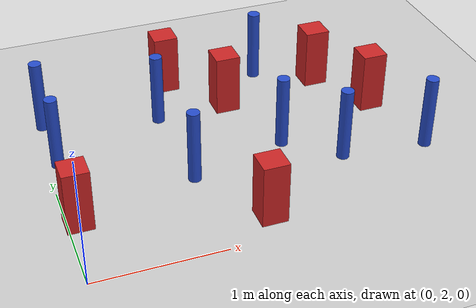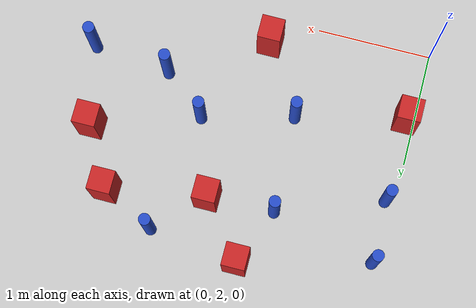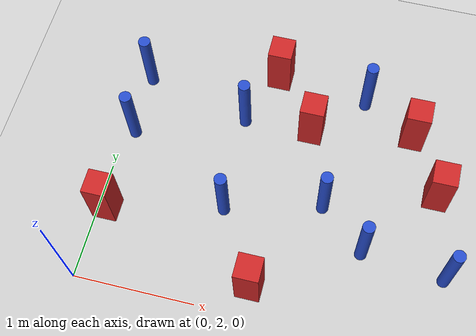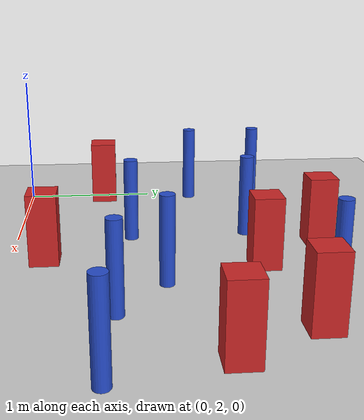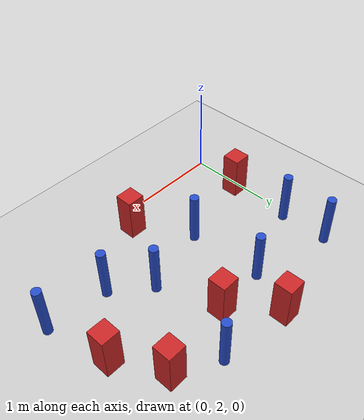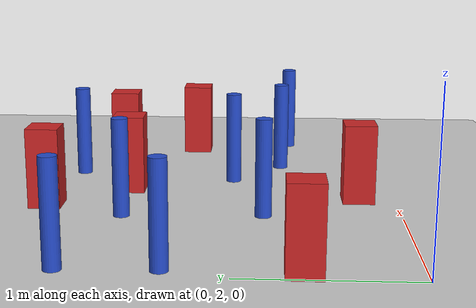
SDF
<sdf version="1.6">
 <world name="default">
  <model name="ground_plane">
   <static>1</static>
   <link name="link">
    <collision name="collision">
     <geometry><plane><normal>0 0 1</normal><size>100 100</size></plane></geometry>
     <surface><friction><ode><mu>100</mu><mu2>50</mu2></ode></friction></surface>
    </collision>
    <visual name="visual">
     <cast_shadows>0</cast_shadows>
     <geometry><plane><normal>0 0 1</normal><size>100 100</size></plane></geometry>
     <material>
      <ambient>1.0 1.0 1.0 1.0</ambient>
      <diffuse>0.8 0.8 0.8 1.0</diffuse>
      <specular>0.01 0.01 0.01 1.000000</specular>
     </material>
    </visual>
   </link>
  </model>
  <model name="square_post_obstacle17">
   <static>true</static>
   <pose>1.19263947999 4.18591377882 1.91545236811e-07 -7.35059704564e-06 1.12565212e-07 2.39332434364e-05</pose>
   <link name="link">
    <pose>0 0 0.25 0 -0 0</pose>
    <inertial>
     <mass>100</mass>
     <inertia>
      <ixx>0.166667</ixx>
      <ixy>0</ixy>
      <ixz>0</ixz>
      <iyy>0.166667</iyy>
      <iyz>0</iyz>
      <izz>0.166667</izz>
     </inertia>
    </inertial>
    <collision name="collision"><geometry><box><size>.2 .2 .5</size></box></geometry></collision>
    <visual name="visual">
     <geometry><box><size>.2 .2 .5</size></box></geometry>
     <material>
      <script><name>Gazebo/Red</name><uri>file://media/materials/scripts/gazebo.material</uri></script>
     </material>
    </visual>
   </link>
  </model>
  <model name="square_post_obstacle39">
   <static>true</static>
   <pose>2.42688040224 3.85473253864 1.91545236811e-07 -7.35059704564e-06 1.12565212e-07 2.39332434364e-05</pose>
   <link name="link">
    <pose>0 0 0.25 0 -0 0</pose>
    <inertial>
     <mass>100</mass>
     <inertia>
      <ixx>0.166667</ixx>
      <ixy>0</ixy>
      <ixz>0</ixz>
      <iyy>0.166667</iyy>
      <iyz>0</iyz>
      <izz>0.166667</izz>
     </inertia>
    </inertial>
    <collision name="collision"><geometry><box><size>.2 .2 .5</size></box></geometry></collision>
    <visual name="visual">
     <geometry><box><size>.2 .2 .5</size></box></geometry>
     <material>
      <script><name>Gazebo/Red</name><uri>file://media/materials/scripts/gazebo.material</uri></script>
     </material>
    </visual>
   </link>
  </model>
  <model name="pole_obstacle44">
   <static>true</static>
   <pose>0.989764067088 3.68834104193 7.38925637345e-09 -8.47170692799e-08 1.24976765046e-08 -1.74513093018e-07</pose>
   <link name="link">
    <pose>0 0 0.3 0 -0 0</pose>
    <inertial>
     <mass>1</mass>
     <inertia><ixx>0.145833</ixx><ixy>0</ixy><ixz>0</ixz><iyy>0.145833</iyy><iyz>0</iyz><izz>0.125</izz></inertia>
    </inertial>
    <collision name="collision">
     <geometry><cylinder><radius>0.05</radius><length>.6</length></cylinder></geometry>
    </collision>
    <visual name="visual">
     <geometry><cylinder><radius>0.05</radius><length>.6</length></cylinder></geometry>
     <material>
      <script><name>Gazebo/Blue</name><uri>file://media/materials/scripts/gazebo.material</uri></script>
     </material>
    </visual>
   </link>
  </model>
  <model name="pole_obstacle51">
   <static>true</static>
   <pose>2.19069696406 2.71610709585 7.38925637345e-09 -8.47170692798e-08 1.24976764939e-08 -1.74513093025e-07</pose>
   <link name="link">
    <pose>0 0 0.3 0 -0 0</pose>
    <inertial>
     <mass>1</mass>
     <inertia><ixx>0.145833</ixx><ixy>0</ixy><ixz>0</ixz><iyy>0.145833</iyy><iyz>0</iyz><izz>0.125</izz></inertia>
    </inertial>
    <collision name="collision">
     <geometry><cylinder><radius>0.05</radius><length>.6</length></cylinder></geometry>
    </collision>
    <visual name="visual">
     <geometry><cylinder><radius>0.05</radius><length>.6</length></cylinder></geometry>
     <material>
      <script><name>Gazebo/Blue</name><uri>file://media/materials/scripts/gazebo.material</uri></script>
     </material>
    </visual>
   </link>
  </model>
  <model name="pole_obstacle87">
   <static>true</static>
   <pose>1.02011224065 2.83560316325 7.38925637345e-09 -8.471706928e-08 1.2497676505e-08 -1.74513093017e-07</pose>
   <link name="link">
    <pose>0 0 0.3 0 -0 0</pose>
    <inertial>
     <mass>1</mass>
     <inertia><ixx>0.145833</ixx><ixy>0</ixy><ixz>0</ixz><iyy>0.145833</iyy><iyz>0</iyz><izz>0.125</izz></inertia>
    </inertial>
    <collision name="collision">
     <geometry><cylinder><radius>0.05</radius><length>.6</length></cylinder></geometry>
    </collision>
    <visual name="visual">
     <geometry><cylinder><radius>0.05</radius><length>.6</length></cylinder></geometry>
     <material>
      <script><name>Gazebo/Blue</name><uri>file://media/materials/scripts/gazebo.material</uri></script>
     </material>
    </visual>
   </link>
  </model>
  <model name="pole_obstacle109">
   <static>true</static>
   <pose>2.86967858263 2.64577378153 7.38925637345e-09 -8.47170692798e-08 1.24976764939e-08 -1.74513093025e-07</pose>
   <link name="link">
    <pose>0 0 0.3 0 -0 0</pose>
    <inertial>
     <mass>1</mass>
     <inertia><ixx>0.145833</ixx><ixy>0</ixy><ixz>0</ixz><iyy>0.145833</iyy><iyz>0</iyz><izz>0.125</izz></inertia>
    </inertial>
    <collision name="collision">
     <geometry><cylinder><radius>0.05</radius><length>.6</length></cylinder></geometry>
    </collision>
    <visual name="visual">
     <geometry><cylinder><radius>0.05</radius><length>.6</length></cylinder></geometry>
     <material>
      <script><name>Gazebo/Blue</name><uri>file://media/materials/scripts/gazebo.material</uri></script>
     </material>
    </visual>
   </link>
  </model>
  <model name="square_post_obstacle118">
   <static>true</static>
   <pose>1.38955177496 2.2382070227 1.91545236811e-07 -7.35059704564e-06 1.12565212e-07 2.39332434364e-05</pose>
   <link name="link">
    <pose>0 0 0.25 0 -0 0</pose>
    <inertial>
     <mass>100</mass>
     <inertia>
      <ixx>0.166667</ixx>
      <ixy>0</ixy>
      <ixz>0</ixz>
      <iyy>0.166667</iyy>
      <iyz>0</iyz>
      <izz>0.166667</izz>
     </inertia>
    </inertial>
    <collision name="collision"><geometry><box><size>.2 .2 .5</size></box></geometry></collision>
    <visual name="visual">
     <geometry><box><size>.2 .2 .5</size></box></geometry>
     <material>
      <script><name>Gazebo/Red</name><uri>file://media/materials/scripts/gazebo.material</uri></script>
     </material>
    </visual>
   </link>
  </model>
  <model name="pole_obstacle162">
   <static>true</static>
   <pose>1.97687085489 4.09384812104 7.38925637345e-09 -8.471706928e-08 1.24976765202e-08 -1.7451309301e-07</pose>
   <link name="link">
    <pose>0 0 0.3 0 -0 0</pose>
    <inertial>
     <mass>1</mass>
     <inertia><ixx>0.145833</ixx><ixy>0</ixy><ixz>0</ixz><iyy>0.145833</iyy><iyz>0</iyz><izz>0.125</izz></inertia>
    </inertial>
    <collision name="collision">
     <geometry><cylinder><radius>0.05</radius><length>.6</length></cylinder></geometry>
    </collision>
    <visual name="visual">
     <geometry><cylinder><radius>0.05</radius><length>.6</length></cylinder></geometry>
     <material>
      <script><name>Gazebo/Blue</name><uri>file://media/materials/scripts/gazebo.material</uri></script>
     </material>
    </visual>
   </link>
  </model>
  <model name="square_post_obstacle168">
   <static>true</static>
   <pose>2.70501608202 3.34090830285 1.91545236811e-07 -7.35059704564e-06 1.12565212e-07 2.39332434364e-05</pose>
   <link name="link">
    <pose>0 0 0.25 0 -0 0</pose>
    <inertial>
     <mass>100</mass>
     <inertia>
      <ixx>0.166667</ixx>
      <ixy>0</ixy>
      <ixz>0</ixz>
      <iyy>0.166667</iyy>
      <iyz>0</iyz>
      <izz>0.166667</izz>
     </inertia>
    </inertial>
    <collision name="collision"><geometry><box><size>.2 .2 .5</size></box></geometry></collision>
    <visual name="visual">
     <geometry><box><size>.2 .2 .5</size></box></geometry>
     <material>
      <script><name>Gazebo/Red</name><uri>file://media/materials/scripts/gazebo.material</uri></script>
     </material>
    </visual>
   </link>
  </model>
  <model name="pole_obstacle188">
   <static>true</static>
   <pose>1.8091811792 3.03936202704 7.38925637345e-09 -8.47170692799e-08 1.24976765053e-08 -1.74513093017e-07</pose>
   <link name="link">
    <pose>0 0 0.3 0 -0 0</pose>
    <inertial>
     <mass>1</mass>
     <inertia><ixx>0.145833</ixx><ixy>0</ixy><ixz>0</ixz><iyy>0.145833</iyy><iyz>0</iyz><izz>0.125</izz></inertia>
    </inertial>
    <collision name="collision">
     <geometry><cylinder><radius>0.05</radius><length>.6</length></cylinder></geometry>
    </collision>
    <visual name="visual">
     <geometry><cylinder><radius>0.05</radius><length>.6</length></cylinder></geometry>
     <material>
      <script><name>Gazebo/Blue</name><uri>file://media/materials/scripts/gazebo.material</uri></script>
     </material>
    </visual>
   </link>
  </model>
  <model name="square_post_obstacle174">
   <static>true</static>
   <pose>0.0825601180676 2.62561157115 1.91545236811e-07 -7.35059704564e-06 1.12565212e-07 2.39332434364e-05</pose>
   <link name="link">
    <pose>0 0 0.25 0 -0 0</pose>
    <inertial>
     <mass>100</mass>
     <inertia>
      <ixx>0.166667</ixx>
      <ixy>0</ixy>
      <ixz>0</ixz>
      <iyy>0.166667</iyy>
      <iyz>0</iyz>
      <izz>0.166667</izz>
     </inertia>
    </inertial>
    <collision name="collision"><geometry><box><size>.2 .2 .5</size></box></geometry></collision>
    <visual name="visual">
     <geometry><box><size>.2 .2 .5</size></box></geometry>
     <material>
      <script><name>Gazebo/Red</name><uri>file://media/materials/scripts/gazebo.material</uri></script>
     </material>
    </visual>
   </link>
  </model>
  <model name="square_post_obstacle180">
   <static>true</static>
   <pose>1.57075333666 3.71105132563 1.91545236811e-07 -7.35059704564e-06 1.12565212e-07 2.39332434364e-05</pose>
   <link name="link">
    <pose>0 0 0.25 0 -0 0</pose>
    <inertial>
     <mass>100</mass>
     <inertia>
      <ixx>0.166667</ixx>
      <ixy>0</ixy>
      <ixz>0</ixz>
      <iyy>0.166667</iyy>
      <iyz>0</iyz>
      <izz>0.166667</izz>
     </inertia>
    </inertial>
    <collision name="collision"><geometry><box><size>.2 .2 .5</size></box></geometry></collision>
    <visual name="visual">
     <geometry><box><size>.2 .2 .5</size></box></geometry>
     <material>
      <script><name>Gazebo/Red</name><uri>file://media/materials/scripts/gazebo.material</uri></script>
     </material>
    </visual>
   </link>
  </model>
  <model name="pole_obstacle189">
   <static>true</static>
   <pose>0.0767521508314 3.90699309603 7.38925637345e-09 -8.47170692799e-08 1.24976765021e-08 -1.74513093019e-07</pose>
   <link name="link">
    <pose>0 0 0.3 0 -0 0</pose>
    <inertial>
     <mass>1</mass>
     <inertia><ixx>0.145833</ixx><ixy>0</ixy><ixz>0</ixz><iyy>0.145833</iyy><iyz>0</iyz><izz>0.125</izz></inertia>
    </inertial>
    <collision name="collision">
     <geometry><cylinder><radius>0.05</radius><length>.6</length></cylinder></geometry>
    </collision>
    <visual name="visual">
     <geometry><cylinder><radius>0.05</radius><length>.6</length></cylinder></geometry>
     <material>
      <script><name>Gazebo/Blue</name><uri>file://media/materials/scripts/gazebo.material</uri></script>
     </material>
    </visual>
   </link>
  </model>
  <model name="pole_obstacle195">
   <static>true</static>
   <pose>0.0884338202309 3.36016677782 7.38925637345e-09 -8.47170692799e-08 1.24976765021e-08 -1.74513093019e-07</pose>
   <link name="link">
    <pose>0 0 0.3 0 -0 0</pose>
    <inertial>
     <mass>1</mass>
     <inertia><ixx>0.145833</ixx><ixy>0</ixy><ixz>0</ixz><iyy>0.145833</iyy><iyz>0</iyz><izz>0.125</izz></inertia>
    </inertial>
    <collision name="collision">
     <geometry><cylinder><radius>0.05</radius><length>.6</length></cylinder></geometry>
    </collision>
    <visual name="visual">
     <geometry><cylinder><radius>0.05</radius><length>.6</length></cylinder></geometry>
     <material>
      <script><name>Gazebo/Blue</name><uri>file://media/materials/scripts/gazebo.material</uri></script>
     </material>
    </visual>
   </link>
  </model>
 </world>
</sdf>
